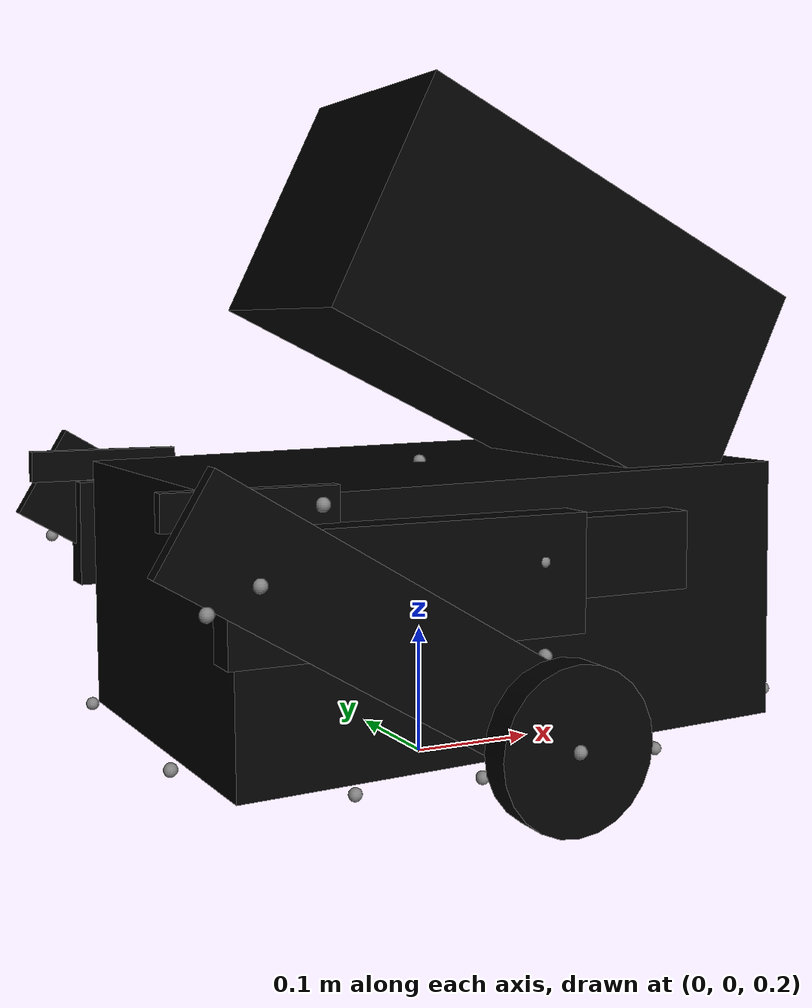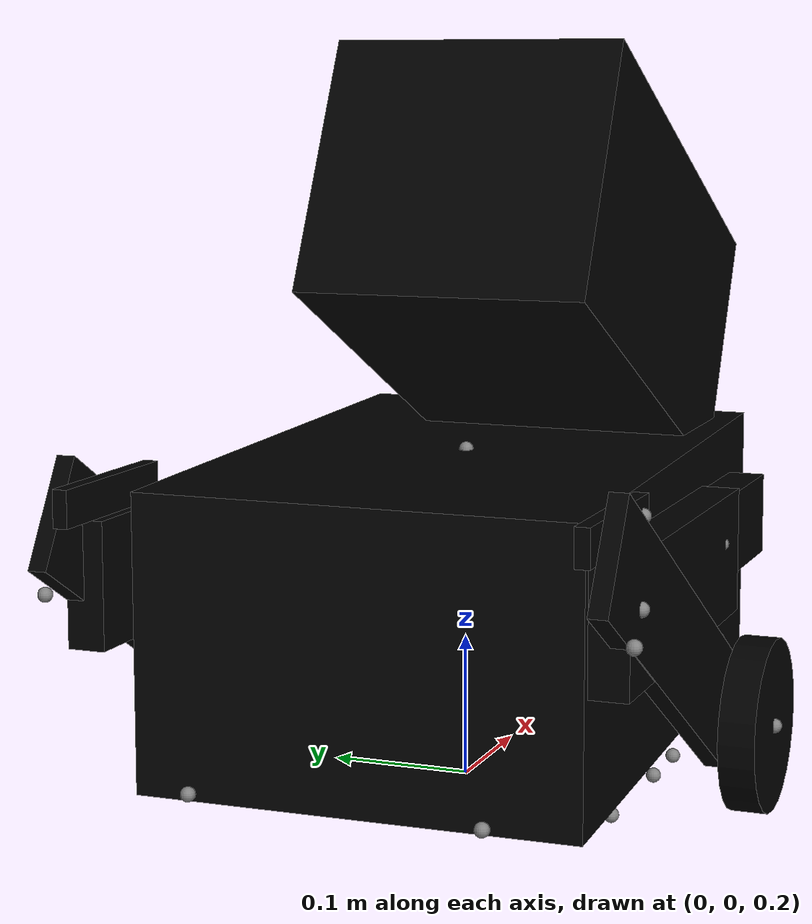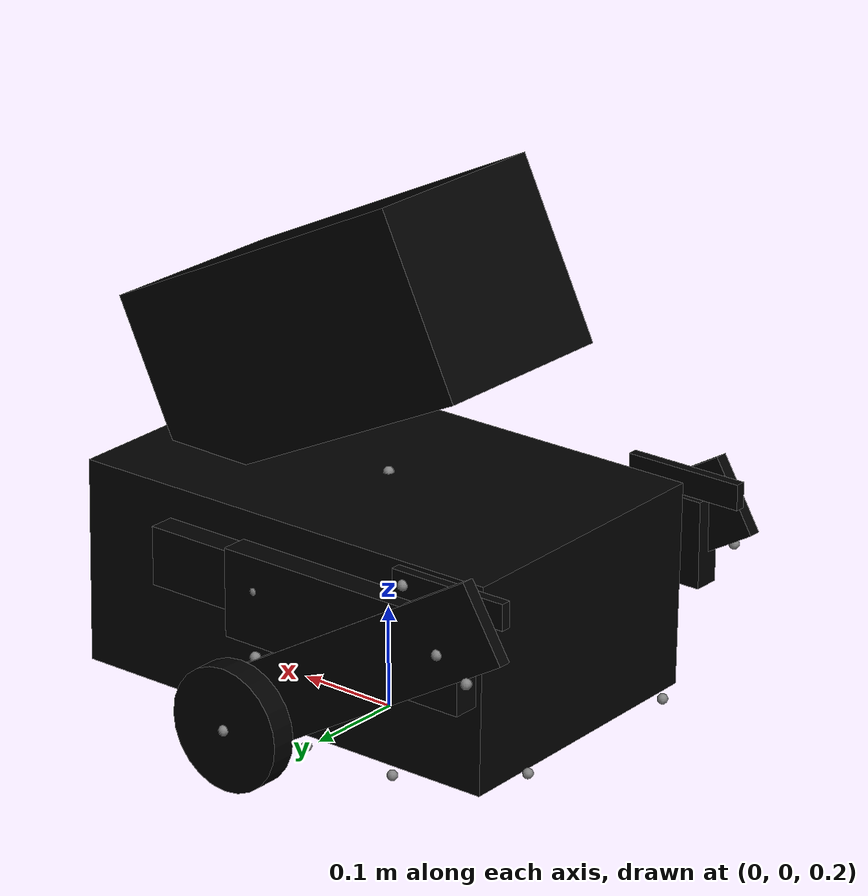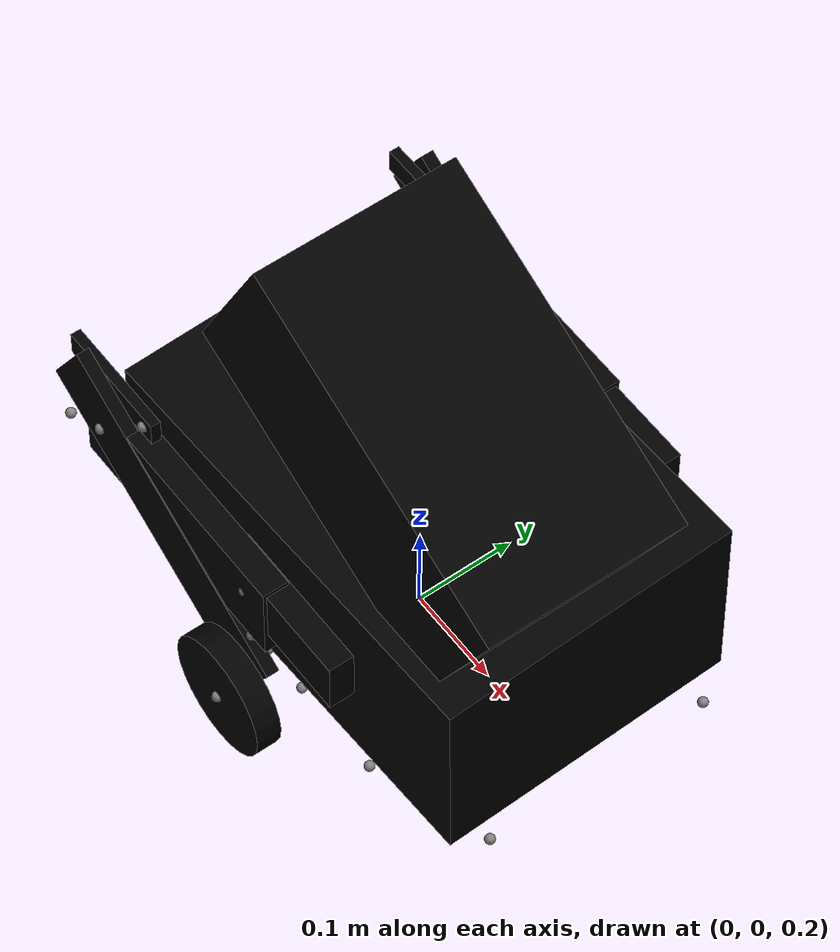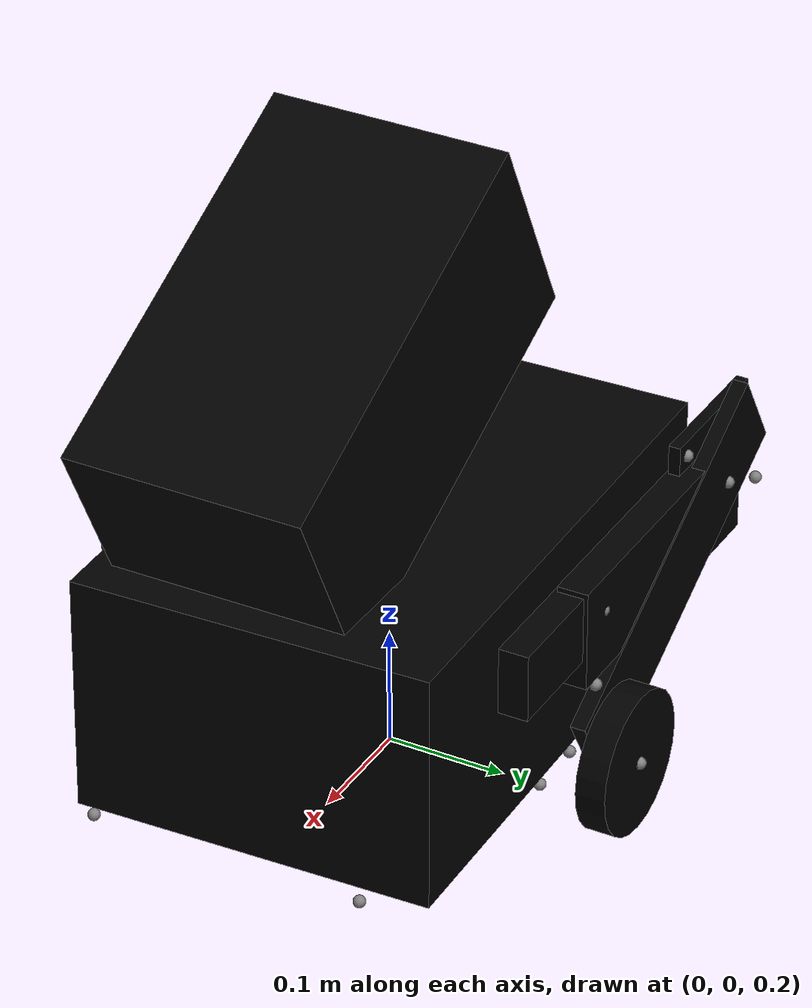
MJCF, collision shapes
<?xml version='1.0' encoding='utf-8'?>
<mujoco model="wheelbipeV14_2">
  <default>
    <default class="robot">
      <default class="motor">
        <joint damping="0.01" armature="0.0001" frictionloss="0.0" />
        <motor />
      </default>
      <default class="visual">
        <geom material="visualgeom" contype="0" conaffinity="0" group="2" />
      </default>
      <default class="collision">
        <geom material="collision_material" condim="3" contype="0" conaffinity="1" priority="1" group="1" solref="0.005 1" solimp="0.99 0.999 1e-05" friction="1 0.01 0.01" />
      </default>
    </default>
  </default>
  <compiler angle="radian" meshdir="../meshes" autolimits="true" />
  <asset>
    <material name="visualgeom" rgba="0.7 0.7 0.7 1" />
    <material name="red" rgba="1 1 1 1" />
    <material name="default_material" rgba="0.7 0.7 0.7 1" />
    <material name="collision_material" rgba="0 0 0 0" />
    <mesh name="base_link.STL" file="../meshes/base_link.STL" />
    <mesh name="gimbal_yaw_link.STL" file="../meshes/gimbal_yaw_link.STL" />
    <mesh name="gimbal_pitch_link.STL" file="../meshes/gimbal_pitch_link.STL" />
    <mesh name="left_front1_link.STL" file="../meshes/left_front1_link.STL" />
    <mesh name="left_front2_link.STL" file="../meshes/left_front2_link.STL" />
    <mesh name="left_front3_link.STL" file="../meshes/left_front3_link.STL" />
    <mesh name="left_front4_link.STL" file="../meshes/left_front4_link.STL" />
    <mesh name="left_rear1_link.STL" file="../meshes/left_rear1_link.STL" />
    <mesh name="left_rear2_link.STL" file="../meshes/left_rear2_link.STL" />
    <mesh name="left_wheel_link.STL" file="../meshes/left_wheel_link.STL" />
    <mesh name="left_spring1_link.STL" file="../meshes/left_spring1_link.STL" />
    <mesh name="left_spring2_link.STL" file="../meshes/left_spring2_link.STL" />
    <mesh name="right_front1_link.STL" file="../meshes/right_front1_link.STL" />
    <mesh name="right_front2_link.STL" file="../meshes/right_front2_link.STL" />
    <mesh name="right_front3_link.STL" file="../meshes/right_front3_link.STL" />
    <mesh name="right_front4_link.STL" file="../meshes/right_front4_link.STL" />
    <mesh name="right_rear1_link.STL" file="../meshes/right_rear1_link.STL" />
    <mesh name="right_rear2_link.STL" file="../meshes/right_rear2_link.STL" />
    <mesh name="right_wheel_link.STL" file="../meshes/right_wheel_link.STL" />
    <mesh name="right_spring1_link.STL" file="../meshes/right_spring1_link.STL" />
    <mesh name="right_spring2_link.STL" file="../meshes/right_spring2_link.STL" />
  </asset>
  <worldbody>
    <body name="base_link" pos="0.00000000 0.00000000 0.38" quat="1 0 0 0" childclass="robot">
      <freejoint name="floating_base" />
      <inertial pos="-0.00582119 0.00168176 -0.04109210" mass="15.96301746" fullinertia="0.19890602 0.29839691 0.37398203 -0.00177966 0.00594931 -0.00016768" />
      <geom name="base_link_collision" pos="0.0051111 0.001174 -0.0455102" quat="0.00240133226452 -0.999876547414 -0.014053463742 -0.00660482335908" type="box" size="0.225 0.15 0.1" class="collision" />
      <site name="contact_site_base_link" pos="0.0051111 0.001174 -0.0455102" quat="0.00240133226452 -0.999876547414 -0.014053463742 -0.00660482335908" type="box" size="0.225 0.15 0.1" rgba="0 0 0 0" />
      <geom name="base_link_visual" pos="0 0 -0.117" quat="1 0 0 0" material="default_material" type="mesh" mesh="base_link.STL" class="visual" />
      <body name="gimbal_yaw_link" pos="0 0 0.05495" quat="1 0 0 0">
        <joint name="gimbal_yaw_joint" type="hinge" axis="0 0 1" armature="0.0001" limited="true" range="-3.141592653589793 3.141592653589793" />
        <site name="gimbal_yaw_joint_site" pos="0 0 0" quat="1 0 0 0" />
        <site name="contact_site_gimbal_yaw_link" pos="0 0 0" quat="1 0 0 0" />
        <inertial pos="-0.032712 0.039683 0.102088" mass="1.1135894" fullinertia="0.0115811 0.0131184 0.0083629 0.0022103 0.0053499 -0.0031031" />
        <geom name="gimbal_yaw_link_visual" pos="0 0 0" quat="1 0 0 0" material="default_material" type="mesh" mesh="gimbal_yaw_link.STL" class="visual" />
        <body name="gimbal_pitch_link" pos="-0.058485 -0.0553 0.18" quat="1 0 0 0">
          <joint name="gimbal_pitch_joint" type="hinge" axis="0 1 0" armature="0.0001" limited="true" range="-1.5707963267948966 1.5707963267948966" />
          <site name="gimbal_pitch_joint_site" pos="0 0 0" quat="1 0 0 0" />
          <inertial pos="0.077937 0.022206 -0.043928" mass="2.9094813" fullinertia="0.0152198 0.019075 0.0180859 -0.0020655 0.0058831 0.001189" />
          <geom name="gimbal_pitch_link_collision" pos="0.1222416 0.0276848 -0.0553651" quat="0.974370054158 0 0.224951100374 0" type="box" size="0.175 0.1 0.0912243" class="collision" />
          <site name="contact_site_gimbal_pitch_link" pos="0.1222416 0.0276848 -0.0553651" quat="0.974370054158 0 0.224951100374 0" type="box" size="0.175 0.1 0.0912243" rgba="0 0 0 0" />
          <geom name="gimbal_pitch_link_visual" pos="0 0 0" quat="1 0 0 0" material="default_material" type="mesh" mesh="gimbal_pitch_link.STL" class="visual" />
        </body>
      </body>
      <body name="left_front1_link" pos="0 0.1845 0" quat="1 0 0 0">
        <joint name="left_front1_joint" type="hinge" ref="0.0" class="motor" axis="0 1 0" damping="0.0" frictionloss="0.0" armature="0.015795" />
        <site name="left_front1_joint_site" pos="0 0 0" quat="1 0 0 0" />
        <inertial pos="0.02531605 -0.01412400 0.00293202" mass="0.13665924" fullinertia="0.00005570 0.00023381 0.00022127 -0.00003357 -0.00001944 -0.00000389" />
        <geom name="left_front1_link_collision" pos="0.0470403 -0.0125 6.4e-06" quat="1 0 0 0" type="box" size="0.0755403 0.0125 0.02845995" class="collision" />
        <site name="contact_site_left_front1_link" pos="0.0470403 -0.0125 6.4e-06" quat="1 0 0 0" type="box" size="0.0755403 0.0125 0.02845995" rgba="0 0 0 0" />
        <geom name="left_front1_link_visual" pos="0 0 0" quat="1 0 0 0" material="default_material" type="mesh" mesh="left_front1_link.STL" class="visual" />
        <body name="left_front2_link" pos="0.11265 -0.0095 0.013046" quat="1 0 0 0">
          <joint name="left_front2_joint" type="hinge" ref="0.0" class="motor" range="-1 0.1" axis="0 1 0" />
          <site name="left_front2_joint_site" pos="0 0 0" quat="1 0 0 0" />
          <inertial pos="-0.0544 -0.0044715 -0.0399756" quat="1 0 0 0" mass="0.0328941" diaginertia="2.95e-05 8.24e-05 5.34e-05" />
          <site name="contact_site_left_front2_link" pos="0 0 0" quat="1 0 0 0" />
          <geom name="left_front2_link_visual" pos="0 0 0" quat="1 0 0 0" material="default_material" type="mesh" mesh="left_front2_link.STL" class="visual" />
          <body name="left_front3_link" pos="-0.10879 0.0065 -0.079941" quat="1 0 0 0">
            <joint name="left_front3_joint" type="hinge" ref="0.0" class="motor" range="-0.1 1" axis="0 1 0" />
            <site name="left_front3_joint_site" pos="0 0 0" quat="1 0 0 0" />
            <inertial pos="-0.0844609 -0.002949 0.0515978" quat="1 0 0 0" mass="0.044351" diaginertia="5.04e-05 0.0001643 0.0001141" />
            <site name="contact_site_left_front3_link" pos="0 0 0" quat="1 0 0 0" />
            <geom name="left_front3_link_visual" pos="0 0 0" quat="1 0 0 0" material="default_material" type="mesh" mesh="left_front3_link.STL" class="visual" />
            <body name="left_front4_link" pos="-0.16505 -0.0065 0.11386" quat="1 0 0 0">
              <joint name="left_front4_joint" type="hinge" ref="0.0" class="motor" range="-2 0.1" axis="0 1 0" />
              <site name="left_front4_joint_site" pos="0 0 0" quat="1 0 0 0" />
              <inertial pos="-0.0483173 -0.0045295 0" quat="1 0 0 0" mass="0.0271098" diaginertia="1.3e-06 3.88e-05 3.79e-05" />
              <geom name="left_front4_link_collision" pos="-0.0483739 -0.005 0" quat="1 0 0 0" type="box" size="0.06072605 0.005 0.01242835" class="collision" />
              <site name="contact_site_left_front4_link" pos="-0.0483739 -0.005 0" quat="1 0 0 0" type="box" size="0.06072605 0.005 0.01242835" rgba="0 0 0 0" />
              <geom name="left_front4_link_visual" pos="0 0 0" quat="1 0 0 0" material="default_material" type="mesh" mesh="left_front4_link.STL" class="visual" />
            </body>
          </body>
        </body>
      </body>
      <body name="left_rear1_link" pos="0 0.174 0" quat="1 0 0 0">
        <joint name="left_rear1_joint" type="hinge" ref="0.0" class="motor" limited="true" range="-3.14 1" axis="0 1 0" armature="0.015795" damping="0.0" frictionloss="0.0" />
        <site name="left_rear1_joint_site" pos="0 0 0" quat="1 0 0 0" />
        <inertial pos="-0.11878103 -0.00279462 0.00086226" mass="0.38254442" fullinertia="0.00013214 0.00273881 0.00266568 0.00015056 0.00003507 -0.00000111" />
        <geom name="left_rear1_link_collision" pos="-0.0993414 0.001 -0.0097397" quat="1 0 0 0" type="box" size="0.1323414 0.013 0.0426967" class="collision" />
        <site name="contact_site_left_rear1_link" pos="-0.0993414 0.001 -0.0097397" quat="1 0 0 0" type="box" size="0.1323414 0.013 0.0426967" rgba="0 0 0 0" />
        <geom name="left_rear1_link_visual" pos="0 0 0" quat="1 0 0 0" material="default_material" type="mesh" mesh="left_rear1_link.STL" class="visual" />
        <body name="left_rear2_link" pos="-0.21 0.0145 0" quat="1 0 0 0">
          <joint name="left_rear2_joint" type="hinge" ref="0.0" class="motor" range="0 1.2" axis="0 1 0" />
          <site name="left_rear2_joint_site" pos="0 0 0" quat="1 0 0 0" />
          <site name="left_s2r2_rear2_site" pos="0.04758 -0.01405 -0.02292" quat="0.997796329836319 0 0.0663512182644112 0" />
          <inertial pos="0.08464616 -0.00523955 -0.04743407" mass="0.31135718" fullinertia="0.00102346 0.00354846 0.00253867 0.00002545 0.00148132 -0.00001794" />
          <geom name="left_rear2_link_collision" pos="0.088539 -0.0060013 -0.04" quat="0.6849543239 0.678498447369 0.188647262282 -0.186787691033" type="box" size="0.16 0.03913025 0.00638655" class="collision" />
          <site name="contact_site_left_rear2_link" pos="0.088539 -0.0060013 -0.04" quat="0.6849543239 0.678498447369 0.188647262282 -0.186787691033" type="box" size="0.16 0.03913025 0.00638655" rgba="0 0 0 0" />
          <geom name="left_rear2_link_visual" pos="0 0 0" quat="1 0 0 0" material="default_material" type="mesh" mesh="left_rear2_link.STL" class="visual" />
          <body name="left_rear2_guide_link" pos="-0.037468 0.0065 -0.014006">
            <joint name="left_rear2_guide_joint" type="hinge" axis="0 1 0" damping="0.01" armature="0.0001" frictionloss="0" />
            <site name="contact_site_left_rear2_guide_link" pos="0 0 0" quat="1 0 0 0" />
            <inertial pos="0 -0.0125 0" mass="0.00997679960" diaginertia="0.0000006 0.0000012 0.0000006" />
          </body>
          <body name="left_wheel_link" pos="0.21661 0.03355 -0.12483" quat="1 0 0 0">
            <joint name="left_wheel_joint" type="hinge" ref="0.0" class="motor" axis="0 1 0" damping="0.00" frictionloss="0.0" armature="0.0" />
            <site name="left_wheel_joint_site" pos="0 0 0" quat="1 0 0 0" />
            <inertial pos="0.00015349 -0.02021922 -0.00011469" mass="0.51208444" fullinertia="0.00038955 0.00063306 0.00038893 0.00000081 -0.00000093 -0.00000059" />
            <geom name="left_wheel_link_collision" pos="0 -0.0125 0" quat="0.70710679066 0.707106771713 0 0" type="cylinder" size="0.06 0.0125" class="collision" friction="5.5 0.1 0.01" />
            <site name="contact_site_left_wheel_link" pos="0 -0.0125 0" quat="0.70710679066 0.707106771713 0 0" type="cylinder" size="0.06 0.0125" rgba="0 0 0 0" />
            <geom name="left_wheel_link_visual" pos="0 0 0" quat="1 0 0 0" material="default_material" type="mesh" mesh="left_wheel_link.STL" class="visual" />
          </body>
        </body>
        <body name="left_spring1_link" pos="0.0023551 -0.002 -0.044938" quat="1 0 0 0">
          <joint name="left_spring1_joint" type="hinge" ref="0.0" class="motor" range="-0.5 0.1" axis="0 1 0" />
          <site name="left_spring1_joint_site" pos="0 0 0" quat="1 0 0 0" />
          <inertial pos="-0.0452477 -0.005217 0.0060453" quat="1 0 0 0" mass="0.0305218" diaginertia="7e-07 1.78e-05 1.74e-05" />
          <geom name="left_spring1_link_visual" pos="0 0 0" quat="1 0 0 0" material="default_material" type="mesh" mesh="left_spring1_link.STL" class="visual" />
          <body name="left_spring2_link" pos="-0.03295 -0.0055 0.0044022" quat="0.997795666274 0 0.0663611962244 0">
            <joint name="left_spring2_joint" type="slide" ref="0.0" class="motor" range="-0.015 0.065" axis="-1 0 0" damping="0" frictionloss="0" />
            <site name="left_spring2_joint_site" pos="0 0 0" quat="1 0 0 0" />
            <site name="left_s2r2_spring2_site" pos="-0.133 0.00795 0.0" quat="1 0 0 0" />
            <inertial pos="-0.0688384 0.0001674 0" quat="1 0 0 0" mass="0.0923989" diaginertia="2.5e-06 0.0001019 0.0001017" />
            <geom name="left_spring2_link_visual" pos="0 0 0" quat="1 0 0 0" material="default_material" type="mesh" mesh="left_spring2_link.STL" class="visual" />
          </body>
        </body>
      </body>
      <body name="right_front1_link" pos="0 -0.1845 0" quat="1 0 0 0">
        <joint name="right_front1_joint" type="hinge" ref="0.0" class="motor" axis="0 1 0" damping="0.0" frictionloss="0.0" armature="0.015795" />
        <site name="right_front1_joint_site" pos="0 0 0" quat="1 0 0 0" />
        <inertial pos="0.02850117 0.01065212 0.00330091" mass="0.12138704" fullinertia="0.00004217 0.00021931 0.00019686 0.00002156 -0.00001816 0.00000250" />
        <geom name="right_front1_link_collision" pos="0.0470403 0.0125 6.4e-06" quat="1 0 0 0" type="box" size="0.0755403 0.0125 0.02845995" class="collision" />
        <site name="contact_site_right_front1_link" pos="0.0470403 0.0125 6.4e-06" quat="1 0 0 0" type="box" size="0.0755403 0.0125 0.02845995" rgba="0 0 0 0" />
        <geom name="right_front1_link_visual" pos="0 0 0" quat="1 0 0 0" material="default_material" type="mesh" mesh="right_front1_link.STL" class="visual" />
        <body name="right_front2_link" pos="0.11265 0.0095 0.013046" quat="1 0 0 0">
          <joint name="right_front2_joint" type="hinge" ref="0.0" class="motor" range="-1 0.1" axis="0 1 0" />
          <site name="right_front2_joint_site" pos="0 0 0" quat="1 0 0 0" />
          <inertial pos="-0.0543861 0.0044715 -0.0399654" quat="1 0 0 0" mass="0.0328941" diaginertia="2.95e-05 8.24e-05 5.34e-05" />
          <site name="contact_site_right_front2_link" pos="0 0 0" quat="1 0 0 0" />
          <geom name="right_front2_link_visual" pos="0 0 0" quat="1 0 0 0" material="default_material" type="mesh" mesh="right_front2_link.STL" class="visual" />
          <body name="right_front3_link" pos="-0.10879 -0.0065 -0.079941" quat="1 0 0 0">
            <joint name="right_front3_joint" type="hinge" ref="0.0" class="motor" range="-0.1 1" axis="0 1 0" />
            <site name="right_front3_joint_site" pos="0 0 0" quat="1 0 0 0" />
            <inertial pos="-0.0844609 0.002949 0.0515978" quat="1 0 0 0" mass="0.044351" diaginertia="5.04e-05 0.0001643 0.0001141" />
            <site name="contact_site_right_front3_link" pos="0 0 0" quat="1 0 0 0" />
            <geom name="right_front3_link_visual" pos="0 0 0" quat="1 0 0 0" material="default_material" type="mesh" mesh="right_front3_link.STL" class="visual" />
            <body name="right_front4_link" pos="-0.16505 0.0065 0.11386" quat="1 0 0 0">
              <joint name="right_front4_joint" type="hinge" ref="0.0" class="motor" range="-2 0.1" axis="0 1 0" />
              <site name="right_front4_joint_site" pos="0 0 0" quat="1 0 0 0" />
              <inertial pos="-0.0483173 0.0045295 0" quat="1 0 0 0" mass="0.0271098" diaginertia="1.3e-06 3.88e-05 3.79e-05" />
              <geom name="right_front4_link_collision" pos="-0.0483739 0.005 0" quat="1 0 0 0" type="box" size="0.06072605 0.005 0.01242835" class="collision" />
              <site name="contact_site_right_front4_link" pos="-0.0483739 0.005 0" quat="1 0 0 0" type="box" size="0.06072605 0.005 0.01242835" rgba="0 0 0 0" />
              <geom name="right_front4_link_visual" pos="0 0 0" quat="1 0 0 0" material="default_material" type="mesh" mesh="right_front4_link.STL" class="visual" />
            </body>
          </body>
        </body>
      </body>
      <body name="right_rear1_link" pos="0 -0.174 0" quat="1 0 0 0">
        <joint name="right_rear1_joint" type="hinge" ref="0.0" class="motor" limited="true" range="-3.14 1" axis="0 1 0" armature="0.015795" damping="0.0" frictionloss="0.0" />
        <site name="right_rear1_joint_site" pos="0 0 0" quat="1 0 0 0" />
        <inertial pos="-0.11878102 0.00279462 0.00086226" mass="0.38254442" fullinertia="0.00013214 0.00273881 0.00266568 -0.00015056 0.00003507 0.00000111" />
        <geom name="right_rear1_link_collision" pos="-0.0993414 -0.001 -0.0097397" quat="1 0 0 0" type="box" size="0.1323414 0.013 0.0426967" class="collision" />
        <site name="contact_site_right_rear1_link" pos="-0.0993414 -0.001 -0.0097397" quat="1 0 0 0" type="box" size="0.1323414 0.013 0.0426967" rgba="0 0 0 0" />
        <geom name="right_rear1_link_visual" pos="0 0 0" quat="1 0 0 0" material="default_material" type="mesh" mesh="right_rear1_link.STL" class="visual" />
        <body name="right_rear2_link" pos="-0.21 -0.0145 0" quat="1 0 0 0">
          <joint name="right_rear2_joint" type="hinge" ref="0.0" class="motor" range="0 1.2" axis="0 1 0" />
          <site name="right_rear2_joint_site" pos="0 0 0" quat="1 0 0 0" />
          <site name="right_s2r2_rear2_site" pos="0.04758 0.01405 -0.02292" quat="0.997796329836319 0 0.0663512182644112 0" />
          <inertial pos="0.08401127 0.00545683 -0.04698266" mass="0.30296958" fullinertia="0.00101902 0.00353775 0.00253117 -0.00002700 0.00147745 0.00001904" />
          <geom name="right_rear2_link_collision" pos="0.08855 0.0060154 -0.04" quat="0.683072675465 -0.680699920397 0.187956387594 0.186364521216" type="box" size="0.16 0.03884575 0.00632955" class="collision" />
          <site name="contact_site_right_rear2_link" pos="0.08855 0.0060154 -0.04" quat="0.683072675465 -0.680699920397 0.187956387594 0.186364521216" type="box" size="0.16 0.03884575 0.00632955" rgba="0 0 0 0" />
          <geom name="right_rear2_link_visual" pos="0 0 0" quat="1 0 0 0" material="default_material" type="mesh" mesh="right_rear2_link.STL" class="visual" />
          <body name="right_rear2_guide_link" pos="-0.0374678 -0.0065 -0.0140058">
            <joint name="right_rear2_guide_joint" type="hinge" axis="0 1 0" damping="0.01" armature="0.0001" frictionloss="0" />
            <site name="contact_site_right_rear2_guide_link" pos="0 0 0" quat="1 0 0 0" />
            <inertial pos="0 0.0125 0" mass="0.00997679960" diaginertia="0.0000006 0.0000012 0.0000006" />
          </body>
          <body name="right_wheel_link" pos="0.21661 -0.03355 -0.12483" quat="1 0 0 0">
            <joint name="right_wheel_joint" type="hinge" ref="0.0" class="motor" axis="0 1 0" damping="0.00" frictionloss="0.0" armature="0.0" />
            <site name="right_wheel_joint_site" pos="0 0 0" quat="1 0 0 0" />
            <inertial pos="0.00017786 0.02021922 -0.00007128" mass="0.51208444" fullinertia="0.00038992 0.00063306 0.00038855 -0.00000092 -0.00000070 0.00000038" />
            <geom name="right_wheel_link_collision" pos="0 0.0125 0" quat="0.70710679066 0.707106771713 0 0" type="cylinder" size="0.06 0.0125" class="collision" friction="5.5 0.1 0.01" />
            <site name="contact_site_right_wheel_link" pos="0 0.0125 0" quat="0.70710679066 0.707106771713 0 0" type="cylinder" size="0.06 0.0125" rgba="0 0 0 0" />
            <geom name="right_wheel_link_visual" pos="0 0 0" quat="1 0 0 0" material="default_material" type="mesh" mesh="right_wheel_link.STL" class="visual" />
          </body>
        </body>
        <body name="right_spring1_link" pos="0.0023551 0.00195 -0.0449383" quat="1 0 0 0">
          <joint name="right_spring1_joint" type="hinge" ref="0.0" class="motor" range="-0.5 0.1" axis="0 1 0" />
          <site name="right_spring1_joint_site" pos="0 0 0" quat="1 0 0 0" />
          <inertial pos="-0.0452477 0.005217 0.0060453" quat="1 0 0 0" mass="0.0305218" diaginertia="7e-07 1.78e-05 1.74e-05" />
          <geom name="right_spring1_link_visual" pos="0 0 0" quat="1 0 0 0" material="default_material" type="mesh" mesh="right_spring1_link.STL" class="visual" />
          <body name="right_spring2_link" pos="-0.03295 0.0055 0.0044022" quat="0.997795666274 0 0.0663611962244 0">
            <joint name="right_spring2_joint" type="slide" ref="0.0" class="motor" range="-0.015 0.065" axis="-1 0 0" damping="0" frictionloss="0" />
            <site name="right_spring2_joint_site" pos="0 0 0" quat="1 0 0 0" />
            <site name="right_s2r2_spring2_site" pos="-0.133 -0.00795 0.0" quat="1 0 0 0" />
            <inertial pos="-0.0688384 -0.0001674 0" quat="1 0 0 0" mass="0.0923989" diaginertia="2.5e-06 0.0001019 0.0001017" />
            <geom name="right_spring2_link_visual" pos="0 0 0" quat="1 0 0 0" material="default_material" type="mesh" mesh="right_spring2_link.STL" class="visual" />
          </body>
        </body>
      </body>
      <body name="left_bottom1_guide_link" pos="0.125 -0.146 -0.156996">
        <joint name="left_bottom1_guide_joint" type="hinge" axis="0 1 0" damping="0.01" armature="0.0001" frictionloss="0" />
        <site name="contact_site_left_bottom1_guide_link" pos="0 0 0" quat="1 0 0 0" />
        <inertial pos="0 0.283 -0.0000043" mass="0.01281149965" diaginertia="0.0000011 0.0000016 0.0000011" />
      </body>
      <body name="left_bottom2_guide_link" pos="0.025 0.146 -0.158999995">
        <joint name="left_bottom2_guide_joint" type="hinge" axis="0 1 0" damping="0.01" armature="0.0001" frictionloss="0" />
        <site name="contact_site_left_bottom2_guide_link" pos="0 0 0" quat="1 0 0 0" />
        <inertial pos="0 -0.009 0" mass="0.01281149965" diaginertia="0.0000011 0.0000016 0.0000011" />
      </body>
      <body name="left_bottom3_guide_link" pos="-0.025 0.146 -0.158999995">
        <joint name="left_bottom3_guide_joint" type="hinge" axis="0 1 0" damping="0.01" armature="0.0001" frictionloss="0" />
        <site name="contact_site_left_bottom3_guide_link" pos="0 0 0" quat="1 0 0 0" />
        <inertial pos="0 -0.009 0" mass="0.01281149965" diaginertia="0.0000011 0.0000016 0.0000011" />
      </body>
      <body name="left_bottom4_guide_link" pos="-0.125 0.146 -0.157">
        <joint name="left_bottom4_guide_joint" type="hinge" axis="0 1 0" damping="0.01" armature="0.0001" frictionloss="0" />
        <site name="contact_site_left_bottom4_guide_link" pos="0 0 0" quat="1 0 0 0" />
        <inertial pos="0 -0.009 0" mass="0.01281149965" diaginertia="0.0000011 0.0000016 0.0000011" />
      </body>
      <body name="left_front1_guide_link" pos="0.18571 0.115 -0.143725">
        <joint name="left_front1_guide_joint" type="hinge" axis="0 1 0" damping="0.01" armature="0.0001" frictionloss="0" />
        <site name="contact_site_left_front1_guide_link" pos="0 0 0" quat="1 0 0 0" />
        <inertial pos="0 -0.009 0" mass="0.01281149965" diaginertia="0.0000011 0.0000016 0.0000011" />
      </body>
      <body name="left_front_guide_link" pos="0.25549 0.115 -0.132">
        <joint name="left_front_guide_joint" type="hinge" axis="0 1 0" damping="0.01" armature="0.0001" frictionloss="0" />
        <site name="contact_site_left_front_guide_link" pos="0 0 0" quat="1 0 0 0" />
        <inertial pos="0 -0.009 0" mass="0.01281149965" diaginertia="0.0000011 0.0000016 0.0000011" />
      </body>
      <body name="left_rear_guide_link" pos="-0.24047 0.099 -0.137">
        <joint name="left_rear_guide_joint" type="hinge" axis="0 1 0" damping="0.01" armature="0.0001" frictionloss="0" />
        <site name="contact_site_left_rear_guide_link" pos="0 0 0" quat="1 0 0 0" />
        <inertial pos="0 -0.009 0" mass="0.01281149965" diaginertia="0.0000011 0.0000016 0.0000011" />
      </body>
      <body name="right_bottom1_guide_link" pos="0.125 -0.146 -0.156996">
        <joint name="right_bottom1_guide_joint" type="hinge" axis="0 1 0" damping="0.01" armature="0.0001" frictionloss="0" />
        <site name="contact_site_right_bottom1_guide_link" pos="0 0 0" quat="1 0 0 0" />
        <inertial pos="0 0.009 0" mass="0.01281149965" diaginertia="0.0000011 0.0000016 0.0000011" />
      </body>
      <body name="right_bottom2_guide_link" pos="0.025 -0.146 -0.158996">
        <joint name="right_bottom2_guide_joint" type="hinge" axis="0 1 0" damping="0.01" armature="0.0001" frictionloss="0" />
        <site name="contact_site_right_bottom2_guide_link" pos="0 0 0" quat="1 0 0 0" />
        <inertial pos="0 0.009 0" mass="0.01281149965" diaginertia="0.0000011 0.0000016 0.0000011" />
      </body>
      <body name="right_bottom3_guide_link" pos="-0.025 -0.146 -0.158996">
        <joint name="right_bottom3_guide_joint" type="hinge" axis="0 1 0" damping="0.01" armature="0.0001" frictionloss="0" />
        <site name="contact_site_right_bottom3_guide_link" pos="0 0 0" quat="1 0 0 0" />
        <inertial pos="0 0.009 0" mass="0.01281149965" diaginertia="0.0000011 0.0000016 0.0000011" />
      </body>
      <body name="right_bottom4_guide_link" pos="-0.125 -0.146 -0.156996">
        <joint name="right_bottom4_guide_joint" type="hinge" axis="0 1 0" damping="0.01" armature="0.0001" frictionloss="0" />
        <site name="contact_site_right_bottom4_guide_link" pos="0 0 0" quat="1 0 0 0" />
        <inertial pos="0 0.009 0" mass="0.01281149965" diaginertia="0.0000011 0.0000016 0.0000011" />
      </body>
      <body name="right_front1_guide_link" pos="0.18571 -0.115 -0.143725">
        <joint name="right_front1_guide_joint" type="hinge" axis="0 1 0" damping="0.01" armature="0.0001" frictionloss="0" />
        <site name="contact_site_right_front1_guide_link" pos="0 0 0" quat="1 0 0 0" />
        <inertial pos="0 0.009 0" mass="0.01281149965" diaginertia="0.0000011 0.0000016 0.0000011" />
      </body>
      <body name="right_front_guide_link" pos="0.25549 -0.115 -0.132">
        <joint name="right_front_guide_joint" type="hinge" axis="0 1 0" damping="0.01" armature="0.0001" frictionloss="0" />
        <site name="contact_site_right_front_guide_link" pos="0 0 0" quat="1 0 0 0" />
        <inertial pos="0 0.009 0" mass="0.01281149965" diaginertia="0.0000011 0.0000016 0.0000011" />
      </body>
      <body name="right_rear_guide_link" pos="-0.24047 -0.099 -0.137">
        <joint name="right_rear_guide_joint" type="hinge" axis="0 1 0" damping="0.01" armature="0.0001" frictionloss="0" />
        <site name="contact_site_right_rear_guide_link" pos="0 0 0" quat="1 0 0 0" />
        <inertial pos="0 0.009 0" mass="0.01281149965" diaginertia="0.0000011 0.0000016 0.0000011" />
      </body>
      <site name="base_link_site" pos="0 0 0" quat="1 0 0 0" />
    </body>
  </worldbody>
  <actuator>
    <motor name="left_front1_joint_ctrl" joint="left_front1_joint" class="motor" ctrllimited="true" ctrlrange="-54 54" forcelimited="true" forcerange="-54 54" />
    <motor name="left_rear1_joint_ctrl" joint="left_rear1_joint" class="motor" ctrllimited="true" ctrlrange="-54 54" forcelimited="true" forcerange="-54 54" />
    <motor name="left_wheel_joint_ctrl" joint="left_wheel_joint" class="motor" ctrllimited="true" ctrlrange="-5 5" forcelimited="true" forcerange="-5 5" />
    <motor name="left_spring2_joint_ctrl" joint="left_spring2_joint" class="motor" ctrllimited="true" ctrlrange="-1000 1000" forcelimited="true" forcerange="-1000 1000" />
    <motor name="right_front1_joint_ctrl" joint="right_front1_joint" class="motor" ctrllimited="true" ctrlrange="-54 54" forcelimited="true" forcerange="-54 54" />
    <motor name="right_rear1_joint_ctrl" joint="right_rear1_joint" class="motor" ctrllimited="true" ctrlrange="-54 54" forcelimited="true" forcerange="-54 54" />
    <motor name="right_wheel_joint_ctrl" joint="right_wheel_joint" class="motor" ctrllimited="true" ctrlrange="-5 5" forcelimited="true" forcerange="-5 5" />
    <motor name="right_spring2_joint_ctrl" joint="right_spring2_joint" class="motor" ctrllimited="true" ctrlrange="-1000 1000" forcelimited="true" forcerange="-1000 1000" />
    <motor name="gimbal_yaw_joint_ctrl" joint="gimbal_yaw_joint" ctrllimited="true" ctrlrange="-2 2" forcelimited="true" forcerange="-2 2" />
    <motor name="gimbal_pitch_joint_ctrl" joint="gimbal_pitch_joint" ctrllimited="true" ctrlrange="-10 10" forcelimited="true" forcerange="-10 10" />
  </actuator>
  <equality>
    <connect body1="left_front4_link" body2="left_rear2_link" anchor="-0.0966 0 0" solref="0.001 1" solimp="0.99 0.99 0.01 0.5 2" />
    <connect body1="left_front3_link" body2="left_rear1_link" anchor="-0.11726 -0.0075 0.06689" solref="0.001 1" solimp="0.99 0.99 0.01 0.5 2" />
    <connect body1="left_spring2_link" body2="left_rear2_link" anchor="-0.133 0.00795 0" solref="0.001 1" solimp="0.99 0.99 0.01 0.5 2" />
    <connect body1="right_front4_link" body2="right_rear2_link" anchor="-0.0966 0 0" solref="0.001 1" solimp="0.99 0.99 0.01 0.5 2" />
    <connect body1="right_front3_link" body2="right_rear1_link" anchor="-0.11726 0.0075 0.06689" solref="0.001 1" solimp="0.99 0.99 0.01 0.5 2" />
    <connect body1="right_spring2_link" body2="right_rear2_link" anchor="-0.133 -0.00795 0" solref="0.001 1" solimp="0.99 0.99 0.01 0.5 2" />
  </equality>
  <contact>
    <exclude body1="base_link" body2="left_front1_link" />
    <exclude body1="base_link" body2="left_rear1_link" />
    <exclude body1="base_link" body2="gimbal_yaw_link" />
    <exclude body1="gimbal_yaw_link" body2="gimbal_pitch_link" />
    <exclude body1="left_rear1_link" body2="left_rear2_link" />
    <exclude body1="left_rear2_link" body2="left_wheel_link" />
    <exclude body1="left_rear1_link" body2="left_spring1_link" />
    <exclude body1="left_spring1_link" body2="left_spring2_link" />
    <exclude body1="base_link" body2="right_front1_link" />
    <exclude body1="base_link" body2="right_rear1_link" />
    <exclude body1="right_rear1_link" body2="right_rear2_link" />
    <exclude body1="right_rear2_link" body2="right_wheel_link" />
    <exclude body1="right_rear1_link" body2="right_spring1_link" />
    <exclude body1="right_spring1_link" body2="right_spring2_link" />
    <exclude body1="left_front1_link" body2="left_front2_link" />
    <exclude body1="left_front2_link" body2="left_front3_link" />
    <exclude body1="left_front3_link" body2="left_front4_link" />
    <exclude body1="left_front4_link" body2="left_rear2_link" />
    <exclude body1="left_front3_link" body2="left_rear1_link" />
    <exclude body1="left_spring2_link" body2="left_rear2_link" />
    <exclude body1="right_front4_link" body2="right_rear2_link" />
    <exclude body1="right_front3_link" body2="right_rear1_link" />
    <exclude body1="right_spring2_link" body2="right_rear2_link" />
  </contact>
  <sensor>
    <framequat name="imu" objtype="site" objname="base_link_site" />
    <gyro name="gyro" site="base_link_site" />
    <accelerometer name="accelerometer" site="base_link_site" />
    <velocimeter name="local_linvel" site="base_link_site" />
    <framezaxis name="upvector" objtype="site" objname="base_link_site" />
    <touch name="contact_force_base_link" site="contact_site_base_link" />
    <touch name="contact_force_gimbal_yaw_link" site="contact_site_gimbal_yaw_link" />
    <touch name="contact_force_gimbal_pitch_link" site="contact_site_gimbal_pitch_link" />
    <touch name="contact_force_left_rear2_guide_link" site="contact_site_left_rear2_guide_link" />
    <touch name="contact_force_left_bottom1_guide_link" site="contact_site_left_bottom1_guide_link" />
    <touch name="contact_force_left_bottom2_guide_link" site="contact_site_left_bottom2_guide_link" />
    <touch name="contact_force_left_bottom3_guide_link" site="contact_site_left_bottom3_guide_link" />
    <touch name="contact_force_left_bottom4_guide_link" site="contact_site_left_bottom4_guide_link" />
    <touch name="contact_force_left_front1_guide_link" site="contact_site_left_front1_guide_link" />
    <touch name="contact_force_left_front_guide_link" site="contact_site_left_front_guide_link" />
    <touch name="contact_force_left_rear_guide_link" site="contact_site_left_rear_guide_link" />
    <touch name="contact_force_right_rear2_guide_link" site="contact_site_right_rear2_guide_link" />
    <touch name="contact_force_right_bottom1_guide_link" site="contact_site_right_bottom1_guide_link" />
    <touch name="contact_force_right_bottom2_guide_link" site="contact_site_right_bottom2_guide_link" />
    <touch name="contact_force_right_bottom3_guide_link" site="contact_site_right_bottom3_guide_link" />
    <touch name="contact_force_right_bottom4_guide_link" site="contact_site_right_bottom4_guide_link" />
    <touch name="contact_force_right_front1_guide_link" site="contact_site_right_front1_guide_link" />
    <touch name="contact_force_right_front_guide_link" site="contact_site_right_front_guide_link" />
    <touch name="contact_force_right_rear_guide_link" site="contact_site_right_rear_guide_link" />
    <touch name="contact_force_left_front1_link" site="contact_site_left_front1_link" />
    <touch name="contact_force_left_front2_link" site="contact_site_left_front2_link" />
    <touch name="contact_force_left_front3_link" site="contact_site_left_front3_link" />
    <touch name="contact_force_left_front4_link" site="contact_site_left_front4_link" />
    <touch name="contact_force_left_rear1_link" site="contact_site_left_rear1_link" />
    <touch name="contact_force_left_rear2_link" site="contact_site_left_rear2_link" />
    <touch name="contact_force_left_wheel_link" site="contact_site_left_wheel_link" />
    <touch name="contact_force_right_front1_link" site="contact_site_right_front1_link" />
    <touch name="contact_force_right_front2_link" site="contact_site_right_front2_link" />
    <touch name="contact_force_right_front3_link" site="contact_site_right_front3_link" />
    <touch name="contact_force_right_front4_link" site="contact_site_right_front4_link" />
    <touch name="contact_force_right_rear1_link" site="contact_site_right_rear1_link" />
    <touch name="contact_force_right_rear2_link" site="contact_site_right_rear2_link" />
    <touch name="contact_force_right_wheel_link" site="contact_site_right_wheel_link" />
    <framepos name="wheel_pos_left" objtype="xbody" objname="left_wheel_link" />
    <framepos name="wheel_pos_right" objtype="xbody" objname="right_wheel_link" />
  </sensor>
</mujoco>
